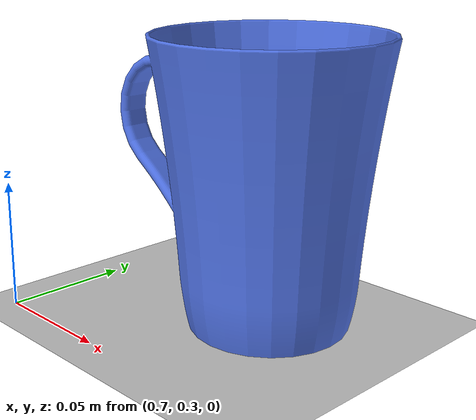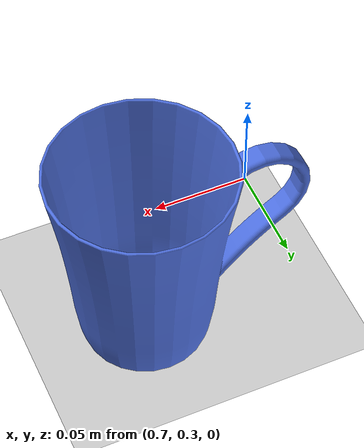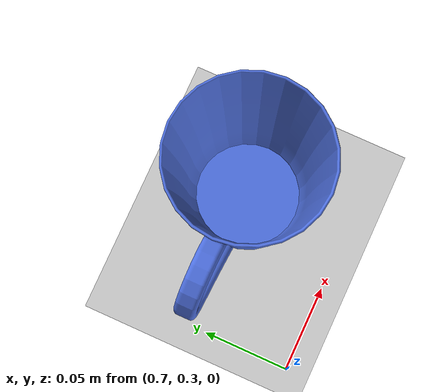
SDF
<sdf version="1.7">
 <world name="default">
  <light name="sun" type="directional">
   <pose>0 0 10 0 -0 0</pose>
   <diffuse>0.8 0.8 0.8 1</diffuse>
   <specular>0.2 0.2 0.2 1</specular>
   <attenuation>
    <range>1000</range>
    <constant>0.9</constant>
    <linear>0.01</linear>
    <quadratic>0.001</quadratic>
   </attenuation>
   <direction>-0.5 0.1 -0.9</direction>
   <spot><inner_angle>0</inner_angle><outer_angle>0</outer_angle><falloff>0</falloff></spot>
  </light>
  <model name="ground_plane">
   <static>1</static>
   <link name="link">
    <collision name="collision">
     <geometry><plane><normal>0 0 1</normal><size>100 100</size></plane></geometry>
     <surface><friction><ode><mu>100000</mu><mu2>1000000</mu2></ode></friction></surface>
     <max_contacts>1000</max_contacts>
    </collision>
    <visual name="visual">
     <cast_shadows>0</cast_shadows>
     <geometry><plane><normal>0 0 1</normal><size>100 100</size></plane></geometry>
     <material>
      <script><uri>file://media/materials/scripts/gazebo.material</uri><name>Gazebo/Grey</name></script>
     </material>
    </visual>
   </link>
  </model>
  <gravity>0 0 -9.8</gravity>
  <magnetic_field>6e-06 2.3e-05 -4.2e-05</magnetic_field>
  <atmosphere type="adiabatic"/>
  <physics type="ode">
   <max_step_size>0.001</max_step_size>
   <real_time_factor>1</real_time_factor>
   <real_time_update_rate>1000</real_time_update_rate>
  </physics>
  <scene><ambient>0.4 0.4 0.4 1</ambient><background>0.7 0.7 0.7 1</background><shadows>1</shadows></scene>
  <spherical_coordinates>
   <surface_model>EARTH_WGS84</surface_model>
   <latitude_deg>0</latitude_deg>
   <longitude_deg>0</longitude_deg>
   <elevation>0</elevation>
   <heading_deg>0</heading_deg>
  </spherical_coordinates>
  <model name="cup_blue">
   <link name="link_13">
    <visual name="visual">
     <geometry><mesh><uri>model://cup_blue/meshes/cup1.dae</uri><scale>1 1 1</scale></mesh></geometry>
     <material>
      <lighting>1</lighting>
      <ambient>0.305 0.439 0.882 1</ambient>
      <diffuse>0.305 0.439 0.882 1</diffuse>
      <specular>0.01 0.01 0.01 1</specular>
      <emissive>0 0 0 1</emissive>
      <shader type="vertex"><normal_map>__default__</normal_map></shader>
     </material>
    </visual>
    <collision name="collision">
     <geometry><mesh><uri>model://cup_blue/meshes/cup1.dae</uri><scale>1 1 1</scale></mesh></geometry>
    </collision>
    <inertial>
     <mass>0.000005</mass>
     <inertia>
      <ixx>0.166667</ixx>
      <ixy>0</ixy>
      <ixz>0</ixz>
      <iyy>0.166667</iyy>
      <iyz>0</iyz>
      <izz>0.166667</izz>
     </inertia>
    </inertial>
   </link>
   <static>0</static>
   <pose>0.775093 0.371247 0.000988 0 3e-06 -3e-06</pose>
  </model>
 </world>
</sdf>
